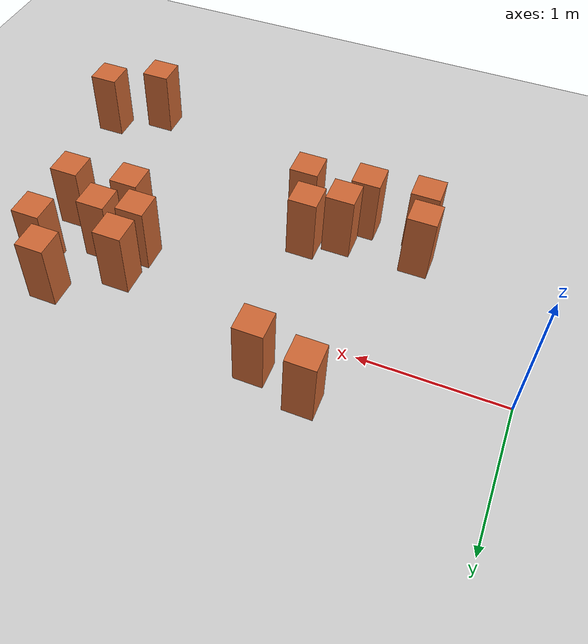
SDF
<sdf version="1.9">
 <world name="default">
  <model name="ground_plane">
   <static>true</static>
   <link name="link">
    <collision name="collision">
     <geometry><plane><normal>0 0 1</normal><size>100 100</size></plane></geometry>
     <surface><friction><ode><mu>100</mu><mu2>50</mu2></ode></friction></surface>
    </collision>
    <visual name="visual">
     <cast_shadows>false</cast_shadows>
     <geometry><plane><normal>0 0 1</normal><size>100 100</size></plane></geometry>
     <material>
      <ambient>0.6 0.6 0.6 1</ambient>
      <diffuse>0.8 0.8 0.8 1</diffuse>
      <specular>0.1 0.1 0.1 1</specular>
     </material>
    </visual>
    <inertial>
     <mass>1</mass>
     <inertia><ixx>1</ixx><ixy>0</ixy><ixz>0</ixz><iyy>1</iyy><iyz>0</iyz><izz>1</izz></inertia>
    </inertial>
   </link>
  </model>
  <model name="wood_cube_10cm_clone_0_clone_3">
   <link name="link">
    <pose>0 0 0.05 0 -0 0</pose>
    <inertial>
     <mass>0.51670000000000005</mass>
     <inertia>
      <ixx>0.00086116700000000003</ixx>
      <ixy>0</ixy>
      <ixz>0</ixz>
      <iyy>0.00086116700000000003</iyy>
      <iyz>0</iyz>
      <izz>0.00086116700000000003</izz>
     </inertia>
    </inertial>
    <collision name="collision">
     <geometry><box><size>0.2 0.2 0.5</size></box></geometry>
     <surface>
      <contact>
       <poissons_ratio>0.34699999999999998</poissons_ratio>
       <elastic_modulus>8800000000</elastic_modulus>
       <ode><kp>100000</kp><kd>100</kd><max_vel>100</max_vel><min_depth>0.001</min_depth></ode>
      </contact>
      <friction>
       <torsional>
        <coefficient>1</coefficient>
        <use_patch_radius>false</use_patch_radius>
        <surface_radius>0.01</surface_radius>
       </torsional>
      </friction>
     </surface>
    </collision>
    <visual name="visual">
     <geometry><box><size>0.2 0.2 0.5</size></box></geometry>
     <material>
      <ambient>0.6 0.3 0.1 1</ambient>
      <diffuse>0.8 0.4 0.2 1</diffuse>
      <specular>0.1 0.1 0.1 1</specular>
     </material>
    </visual>
   </link>
   <pose>1.18442 0.477456 0.249999 0 -0 -0</pose>
   <static>false</static>
  </model>
  <model name="wood_cube_10cm_clone_0_clone_6">
   <link name="link">
    <pose>0 0 0.05 0 -0 0</pose>
    <inertial>
     <mass>0.51670000000000005</mass>
     <inertia>
      <ixx>0.00086116700000000003</ixx>
      <ixy>0</ixy>
      <ixz>0</ixz>
      <iyy>0.00086116700000000003</iyy>
      <iyz>0</iyz>
      <izz>0.00086116700000000003</izz>
     </inertia>
    </inertial>
    <collision name="collision">
     <geometry><box><size>0.2 0.2 0.5</size></box></geometry>
     <surface>
      <contact>
       <poissons_ratio>0.34699999999999998</poissons_ratio>
       <elastic_modulus>8800000000</elastic_modulus>
       <ode><kp>100000</kp><kd>100</kd><max_vel>100</max_vel><min_depth>0.001</min_depth></ode>
      </contact>
      <friction>
       <torsional>
        <coefficient>1</coefficient>
        <use_patch_radius>false</use_patch_radius>
        <surface_radius>0.01</surface_radius>
       </torsional>
      </friction>
     </surface>
    </collision>
    <visual name="visual">
     <geometry><box><size>0.2 0.2 0.5</size></box></geometry>
     <material>
      <ambient>0.6 0.3 0.1 1</ambient>
      <diffuse>0.8 0.4 0.2 1</diffuse>
      <specular>0.1 0.1 0.1 1</specular>
     </material>
    </visual>
   </link>
   <pose>1.54547 0.378806 0.249999 -0 -0 -0</pose>
   <static>false</static>
  </model>
  <model name="wood_cube_10cm_clone_0_clone_4_1">
   <link name="link">
    <pose>0 0 0.05 0 -0 0</pose>
    <inertial>
     <mass>0.51670000000000005</mass>
     <inertia>
      <ixx>0.00086116700000000003</ixx>
      <ixy>0</ixy>
      <ixz>0</ixz>
      <iyy>0.00086116700000000003</iyy>
      <iyz>0</iyz>
      <izz>0.00086116700000000003</izz>
     </inertia>
    </inertial>
    <collision name="collision">
     <geometry><box><size>0.2 0.2 0.5</size></box></geometry>
     <surface>
      <contact>
       <poissons_ratio>0.34699999999999998</poissons_ratio>
       <elastic_modulus>8800000000</elastic_modulus>
       <ode><kp>100000</kp><kd>100</kd><max_vel>100</max_vel><min_depth>0.001</min_depth></ode>
      </contact>
      <friction>
       <torsional>
        <coefficient>1</coefficient>
        <use_patch_radius>false</use_patch_radius>
        <surface_radius>0.01</surface_radius>
       </torsional>
      </friction>
     </surface>
    </collision>
    <visual name="visual">
     <geometry><box><size>0.2 0.2 0.5</size></box></geometry>
     <material>
      <ambient>0.6 0.3 0.1 1</ambient>
      <diffuse>0.8 0.4 0.2 1</diffuse>
      <specular>0.1 0.1 0.1 1</specular>
     </material>
    </visual>
   </link>
   <pose>2.67176 0.017737 0.249999 -0 -0 -0</pose>
   <static>false</static>
  </model>
  <model name="wood_cube_10cm_clone_0_clone_4_2">
   <link name="link">
    <pose>0 0 0.05 0 -0 0</pose>
    <inertial>
     <mass>0.51670000000000005</mass>
     <inertia>
      <ixx>0.00086116700000000003</ixx>
      <ixy>0</ixy>
      <ixz>0</ixz>
      <iyy>0.00086116700000000003</iyy>
      <iyz>0</iyz>
      <izz>0.00086116700000000003</izz>
     </inertia>
    </inertial>
    <collision name="collision">
     <geometry><box><size>0.2 0.2 0.5</size></box></geometry>
     <surface>
      <contact>
       <poissons_ratio>0.34699999999999998</poissons_ratio>
       <elastic_modulus>8800000000</elastic_modulus>
       <ode><kp>100000</kp><kd>100</kd><max_vel>100</max_vel><min_depth>0.001</min_depth></ode>
      </contact>
      <friction>
       <torsional>
        <coefficient>1</coefficient>
        <use_patch_radius>false</use_patch_radius>
        <surface_radius>0.01</surface_radius>
       </torsional>
      </friction>
     </surface>
    </collision>
    <visual name="visual">
     <geometry><box><size>0.2 0.2 0.5</size></box></geometry>
     <material>
      <ambient>0.6 0.3 0.1 1</ambient>
      <diffuse>0.8 0.4 0.2 1</diffuse>
      <specular>0.1 0.1 0.1 1</specular>
     </material>
    </visual>
   </link>
   <pose>2.91344 -0.189719 0.249999 -0 0 -0</pose>
   <static>false</static>
  </model>
  <model name="wood_cube_10cm_clone_0_clone_4_3">
   <link name="link">
    <pose>0 0 0.05 0 -0 0</pose>
    <inertial>
     <mass>0.51670000000000005</mass>
     <inertia>
      <ixx>0.00086116700000000003</ixx>
      <ixy>0</ixy>
      <ixz>0</ixz>
      <iyy>0.00086116700000000003</iyy>
      <iyz>0</iyz>
      <izz>0.00086116700000000003</izz>
     </inertia>
    </inertial>
    <collision name="collision">
     <geometry><box><size>0.2 0.2 0.5</size></box></geometry>
     <surface>
      <contact>
       <poissons_ratio>0.34699999999999998</poissons_ratio>
       <elastic_modulus>8800000000</elastic_modulus>
       <ode><kp>100000</kp><kd>100</kd><max_vel>100</max_vel><min_depth>0.001</min_depth></ode>
      </contact>
      <friction>
       <torsional>
        <coefficient>1</coefficient>
        <use_patch_radius>false</use_patch_radius>
        <surface_radius>0.01</surface_radius>
       </torsional>
      </friction>
     </surface>
    </collision>
    <visual name="visual">
     <geometry><box><size>0.2 0.2 0.5</size></box></geometry>
     <material>
      <ambient>0.6 0.3 0.1 1</ambient>
      <diffuse>0.8 0.4 0.2 1</diffuse>
      <specular>0.1 0.1 0.1 1</specular>
     </material>
    </visual>
   </link>
   <pose>3.25851 0.046879 0.249999 -0 0 -0</pose>
   <static>false</static>
  </model>
  <model name="wood_cube_10cm_clone_0_clone_4_4">
   <link name="link">
    <pose>0 0 0.05 0 -0 0</pose>
    <inertial>
     <mass>0.51670000000000005</mass>
     <inertia>
      <ixx>0.00086116700000000003</ixx>
      <ixy>0</ixy>
      <ixz>0</ixz>
      <iyy>0.00086116700000000003</iyy>
      <iyz>0</iyz>
      <izz>0.00086116700000000003</izz>
     </inertia>
    </inertial>
    <collision name="collision">
     <geometry><box><size>0.2 0.2 0.5</size></box></geometry>
     <surface>
      <contact>
       <poissons_ratio>0.34699999999999998</poissons_ratio>
       <elastic_modulus>8800000000</elastic_modulus>
       <ode><kp>100000</kp><kd>100</kd><max_vel>100</max_vel><min_depth>0.001</min_depth></ode>
      </contact>
      <friction>
       <torsional>
        <coefficient>1</coefficient>
        <use_patch_radius>false</use_patch_radius>
        <surface_radius>0.01</surface_radius>
       </torsional>
      </friction>
     </surface>
    </collision>
    <visual name="visual">
     <geometry><box><size>0.2 0.2 0.5</size></box></geometry>
     <material>
      <ambient>0.6 0.3 0.1 1</ambient>
      <diffuse>0.8 0.4 0.2 1</diffuse>
      <specular>0.1 0.1 0.1 1</specular>
     </material>
    </visual>
   </link>
   <pose>3.06552 0.299131 0.249999 -0 0 -0</pose>
   <static>false</static>
  </model>
  <model name="wood_cube_10cm_clone_0_clone_4_5">
   <link name="link">
    <pose>0 0 0.05 0 -0 0</pose>
    <inertial>
     <mass>0.51670000000000005</mass>
     <inertia>
      <ixx>0.00086116700000000003</ixx>
      <ixy>0</ixy>
      <ixz>0</ixz>
      <iyy>0.00086116700000000003</iyy>
      <iyz>0</iyz>
      <izz>0.00086116700000000003</izz>
     </inertia>
    </inertial>
    <collision name="collision">
     <geometry><box><size>0.2 0.2 0.5</size></box></geometry>
     <surface>
      <contact>
       <poissons_ratio>0.34699999999999998</poissons_ratio>
       <elastic_modulus>8800000000</elastic_modulus>
       <ode><kp>100000</kp><kd>100</kd><max_vel>100</max_vel><min_depth>0.001</min_depth></ode>
      </contact>
      <friction>
       <torsional>
        <coefficient>1</coefficient>
        <use_patch_radius>false</use_patch_radius>
        <surface_radius>0.01</surface_radius>
       </torsional>
      </friction>
     </surface>
    </collision>
    <visual name="visual">
     <geometry><box><size>0.2 0.2 0.5</size></box></geometry>
     <material>
      <ambient>0.6 0.3 0.1 1</ambient>
      <diffuse>0.8 0.4 0.2 1</diffuse>
      <specular>0.1 0.1 0.1 1</specular>
     </material>
    </visual>
   </link>
   <pose>2.64649 -0.233893 0.249999 -0 0 -0</pose>
   <static>false</static>
  </model>
  <model name="wood_cube_10cm_clone_0_clone_4_6">
   <link name="link">
    <pose>0 0 0.05 0 -0 0</pose>
    <inertial>
     <mass>0.51670000000000005</mass>
     <inertia>
      <ixx>0.00086116700000000003</ixx>
      <ixy>0</ixy>
      <ixz>0</ixz>
      <iyy>0.00086116700000000003</iyy>
      <iyz>0</iyz>
      <izz>0.00086116700000000003</izz>
     </inertia>
    </inertial>
    <collision name="collision">
     <geometry><box><size>0.2 0.2 0.5</size></box></geometry>
     <surface>
      <contact>
       <poissons_ratio>0.34699999999999998</poissons_ratio>
       <elastic_modulus>8800000000</elastic_modulus>
       <ode><kp>100000</kp><kd>100</kd><max_vel>100</max_vel><min_depth>0.001</min_depth></ode>
      </contact>
      <friction>
       <torsional>
        <coefficient>1</coefficient>
        <use_patch_radius>false</use_patch_radius>
        <surface_radius>0.01</surface_radius>
       </torsional>
      </friction>
     </surface>
    </collision>
    <visual name="visual">
     <geometry><box><size>0.2 0.2 0.5</size></box></geometry>
     <material>
      <ambient>0.6 0.3 0.1 1</ambient>
      <diffuse>0.8 0.4 0.2 1</diffuse>
      <specular>0.1 0.1 0.1 1</specular>
     </material>
    </visual>
   </link>
   <pose>3.2455 -0.406573 0.249999 0 -0 0</pose>
   <static>false</static>
  </model>
  <model name="wood_cube_10cm_clone_0_clone_4_7">
   <link name="link">
    <pose>0 0 0.05 0 -0 0</pose>
    <inertial>
     <mass>0.51670000000000005</mass>
     <inertia>
      <ixx>0.00086116700000000003</ixx>
      <ixy>0</ixy>
      <ixz>0</ixz>
      <iyy>0.00086116700000000003</iyy>
      <iyz>0</iyz>
      <izz>0.00086116700000000003</izz>
     </inertia>
    </inertial>
    <collision name="collision">
     <geometry><box><size>0.2 0.2 0.5</size></box></geometry>
     <surface>
      <contact>
       <poissons_ratio>0.34699999999999998</poissons_ratio>
       <elastic_modulus>8800000000</elastic_modulus>
       <ode><kp>100000</kp><kd>100</kd><max_vel>100</max_vel><min_depth>0.001</min_depth></ode>
      </contact>
      <friction>
       <torsional>
        <coefficient>1</coefficient>
        <use_patch_radius>false</use_patch_radius>
        <surface_radius>0.01</surface_radius>
       </torsional>
      </friction>
     </surface>
    </collision>
    <visual name="visual">
     <geometry><box><size>0.2 0.2 0.5</size></box></geometry>
     <material>
      <ambient>0.6 0.3 0.1 1</ambient>
      <diffuse>0.8 0.4 0.2 1</diffuse>
      <specular>0.1 0.1 0.1 1</specular>
     </material>
    </visual>
   </link>
   <pose>2.81233 -0.458576 0.249999 -0 0 -0</pose>
   <static>false</static>
  </model>
  <model name="wood_cube_10cm_clone_0_clone_4_8">
   <link name="link">
    <pose>0 0 0.05 0 -0 0</pose>
    <inertial>
     <mass>0.51670000000000005</mass>
     <inertia>
      <ixx>0.00086116700000000003</ixx>
      <ixy>0</ixy>
      <ixz>0</ixz>
      <iyy>0.00086116700000000003</iyy>
      <iyz>0</iyz>
      <izz>0.00086116700000000003</izz>
     </inertia>
    </inertial>
    <collision name="collision">
     <geometry><box><size>0.2 0.2 0.5</size></box></geometry>
     <surface>
      <contact>
       <poissons_ratio>0.34699999999999998</poissons_ratio>
       <elastic_modulus>8800000000</elastic_modulus>
       <ode><kp>100000</kp><kd>100</kd><max_vel>100</max_vel><min_depth>0.001</min_depth></ode>
      </contact>
      <friction>
       <torsional>
        <coefficient>1</coefficient>
        <use_patch_radius>false</use_patch_radius>
        <surface_radius>0.01</surface_radius>
       </torsional>
      </friction>
     </surface>
    </collision>
    <visual name="visual">
     <geometry><box><size>0.2 0.2 0.5</size></box></geometry>
     <material>
      <ambient>0.6 0.3 0.1 1</ambient>
      <diffuse>0.8 0.4 0.2 1</diffuse>
      <specular>0.1 0.1 0.1 1</specular>
     </material>
    </visual>
   </link>
   <pose>1.63168 -0.747012 0.249999 -0 0 -0</pose>
   <static>false</static>
  </model>
  <model name="wood_cube_10cm_clone_0_clone_4_9">
   <link name="link">
    <pose>0 0 0.05 0 -0 0</pose>
    <inertial>
     <mass>0.51670000000000005</mass>
     <inertia>
      <ixx>0.00086116700000000003</ixx>
      <ixy>0</ixy>
      <ixz>0</ixz>
      <iyy>0.00086116700000000003</iyy>
      <iyz>0</iyz>
      <izz>0.00086116700000000003</izz>
     </inertia>
    </inertial>
    <collision name="collision">
     <geometry><box><size>0.2 0.2 0.5</size></box></geometry>
     <surface>
      <contact>
       <poissons_ratio>0.34699999999999998</poissons_ratio>
       <elastic_modulus>8800000000</elastic_modulus>
       <ode><kp>100000</kp><kd>100</kd><max_vel>100</max_vel><min_depth>0.001</min_depth></ode>
      </contact>
      <friction>
       <torsional>
        <coefficient>1</coefficient>
        <use_patch_radius>false</use_patch_radius>
        <surface_radius>0.01</surface_radius>
       </torsional>
      </friction>
     </surface>
    </collision>
    <visual name="visual">
     <geometry><box><size>0.2 0.2 0.5</size></box></geometry>
     <material>
      <ambient>0.6 0.3 0.1 1</ambient>
      <diffuse>0.8 0.4 0.2 1</diffuse>
      <specular>0.1 0.1 0.1 1</specular>
     </material>
    </visual>
   </link>
   <pose>1.40973 -0.865742 0.249999 -0 0 -0</pose>
   <static>false</static>
  </model>
  <model name="wood_cube_10cm_clone_0_clone_4_10">
   <link name="link">
    <pose>0 0 0.05 0 -0 0</pose>
    <inertial>
     <mass>0.51670000000000005</mass>
     <inertia>
      <ixx>0.00086116700000000003</ixx>
      <ixy>0</ixy>
      <ixz>0</ixz>
      <iyy>0.00086116700000000003</iyy>
      <iyz>0</iyz>
      <izz>0.00086116700000000003</izz>
     </inertia>
    </inertial>
    <collision name="collision">
     <geometry><box><size>0.2 0.2 0.5</size></box></geometry>
     <surface>
      <contact>
       <poissons_ratio>0.34699999999999998</poissons_ratio>
       <elastic_modulus>8800000000</elastic_modulus>
       <ode><kp>100000</kp><kd>100</kd><max_vel>100</max_vel><min_depth>0.001</min_depth></ode>
      </contact>
      <friction>
       <torsional>
        <coefficient>1</coefficient>
        <use_patch_radius>false</use_patch_radius>
        <surface_radius>0.01</surface_radius>
       </torsional>
      </friction>
     </surface>
    </collision>
    <visual name="visual">
     <geometry><box><size>0.2 0.2 0.5</size></box></geometry>
     <material>
      <ambient>0.6 0.3 0.1 1</ambient>
      <diffuse>0.8 0.4 0.2 1</diffuse>
      <specular>0.1 0.1 0.1 1</specular>
     </material>
    </visual>
   </link>
   <pose>1.72889 -1.03486 0.249999 -0 0 -0</pose>
   <static>false</static>
  </model>
  <model name="wood_cube_10cm_clone_0_clone_4_11">
   <link name="link">
    <pose>0 0 0.05 0 -0 0</pose>
    <inertial>
     <mass>0.51670000000000005</mass>
     <inertia>
      <ixx>0.00086116700000000003</ixx>
      <ixy>0</ixy>
      <ixz>0</ixz>
      <iyy>0.00086116700000000003</iyy>
      <iyz>0</iyz>
      <izz>0.00086116700000000003</izz>
     </inertia>
    </inertial>
    <collision name="collision">
     <geometry><box><size>0.2 0.2 0.5</size></box></geometry>
     <surface>
      <contact>
       <poissons_ratio>0.34699999999999998</poissons_ratio>
       <elastic_modulus>8800000000</elastic_modulus>
       <ode><kp>100000</kp><kd>100</kd><max_vel>100</max_vel><min_depth>0.001</min_depth></ode>
      </contact>
      <friction>
       <torsional>
        <coefficient>1</coefficient>
        <use_patch_radius>false</use_patch_radius>
        <surface_radius>0.01</surface_radius>
       </torsional>
      </friction>
     </surface>
    </collision>
    <visual name="visual">
     <geometry><box><size>0.2 0.2 0.5</size></box></geometry>
     <material>
      <ambient>0.6 0.3 0.1 1</ambient>
      <diffuse>0.8 0.4 0.2 1</diffuse>
      <specular>0.1 0.1 0.1 1</specular>
     </material>
    </visual>
   </link>
   <pose>1.30162 -1.08727 0.249999 -0 0 -0</pose>
   <static>false</static>
  </model>
  <model name="wood_cube_10cm_clone_0_clone_4_12">
   <link name="link">
    <pose>0 0 0.05 0 -0 0</pose>
    <inertial>
     <mass>0.51670000000000005</mass>
     <inertia>
      <ixx>0.00086116700000000003</ixx>
      <ixy>0</ixy>
      <ixz>0</ixz>
      <iyy>0.00086116700000000003</iyy>
      <iyz>0</iyz>
      <izz>0.00086116700000000003</izz>
     </inertia>
    </inertial>
    <collision name="collision">
     <geometry><box><size>0.2 0.2 0.5</size></box></geometry>
     <surface>
      <contact>
       <poissons_ratio>0.34699999999999998</poissons_ratio>
       <elastic_modulus>8800000000</elastic_modulus>
       <ode><kp>100000</kp><kd>100</kd><max_vel>100</max_vel><min_depth>0.001</min_depth></ode>
      </contact>
      <friction>
       <torsional>
        <coefficient>1</coefficient>
        <use_patch_radius>false</use_patch_radius>
        <surface_radius>0.01</surface_radius>
       </torsional>
      </friction>
     </surface>
    </collision>
    <visual name="visual">
     <geometry><box><size>0.2 0.2 0.5</size></box></geometry>
     <material>
      <ambient>0.6 0.3 0.1 1</ambient>
      <diffuse>0.8 0.4 0.2 1</diffuse>
      <specular>0.1 0.1 0.1 1</specular>
     </material>
    </visual>
   </link>
   <pose>0.857616 -0.877862 0.249999 0 -0 -0</pose>
   <static>false</static>
  </model>
  <model name="wood_cube_10cm_clone_0_clone_4_13">
   <link name="link">
    <pose>0 0 0.05 0 -0 0</pose>
    <inertial>
     <mass>0.51670000000000005</mass>
     <inertia>
      <ixx>0.00086116700000000003</ixx>
      <ixy>0</ixy>
      <ixz>0</ixz>
      <iyy>0.00086116700000000003</iyy>
      <iyz>0</iyz>
      <izz>0.00086116700000000003</izz>
     </inertia>
    </inertial>
    <collision name="collision">
     <geometry><box><size>0.2 0.2 0.5</size></box></geometry>
     <surface>
      <contact>
       <poissons_ratio>0.34699999999999998</poissons_ratio>
       <elastic_modulus>8800000000</elastic_modulus>
       <ode><kp>100000</kp><kd>100</kd><max_vel>100</max_vel><min_depth>0.001</min_depth></ode>
      </contact>
      <friction>
       <torsional>
        <coefficient>1</coefficient>
        <use_patch_radius>false</use_patch_radius>
        <surface_radius>0.01</surface_radius>
       </torsional>
      </friction>
     </surface>
    </collision>
    <visual name="visual">
     <geometry><box><size>0.2 0.2 0.5</size></box></geometry>
     <material>
      <ambient>0.6 0.3 0.1 1</ambient>
      <diffuse>0.8 0.4 0.2 1</diffuse>
      <specular>0.1 0.1 0.1 1</specular>
     </material>
    </visual>
   </link>
   <pose>0.898043 -1.11963 0.249999 0 -0 -0</pose>
   <static>false</static>
  </model>
  <model name="wood_cube_10cm_clone_0_clone_4_25">
   <link name="link">
    <pose>0 0 0.05 0 -0 0</pose>
    <inertial>
     <mass>0.51670000000000005</mass>
     <inertia>
      <ixx>0.00086116700000000003</ixx>
      <ixy>0</ixy>
      <ixz>0</ixz>
      <iyy>0.00086116700000000003</iyy>
      <iyz>0</iyz>
      <izz>0.00086116700000000003</izz>
     </inertia>
    </inertial>
    <collision name="collision">
     <geometry><box><size>0.2 0.2 0.5</size></box></geometry>
     <surface>
      <contact>
       <poissons_ratio>0.34699999999999998</poissons_ratio>
       <elastic_modulus>8800000000</elastic_modulus>
       <ode><kp>100000</kp><kd>100</kd><max_vel>100</max_vel><min_depth>0.001</min_depth></ode>
      </contact>
      <friction>
       <torsional>
        <coefficient>1</coefficient>
        <use_patch_radius>false</use_patch_radius>
        <surface_radius>0.01</surface_radius>
       </torsional>
      </friction>
     </surface>
    </collision>
    <visual name="visual">
     <geometry><box><size>0.2 0.2 0.5</size></box></geometry>
     <material>
      <ambient>0.6 0.3 0.1 1</ambient>
      <diffuse>0.8 0.4 0.2 1</diffuse>
      <specular>0.1 0.1 0.1 1</specular>
     </material>
    </visual>
   </link>
   <pose>3.52738 -1.45129 0.249999 -0 0 -0</pose>
   <static>false</static>
  </model>
  <model name="wood_cube_10cm_clone_0_clone_4_26">
   <link name="link">
    <pose>0 0 0.05 0 -0 0</pose>
    <inertial>
     <mass>0.51670000000000005</mass>
     <inertia>
      <ixx>0.00086116700000000003</ixx>
      <ixy>0</ixy>
      <ixz>0</ixz>
      <iyy>0.00086116700000000003</iyy>
      <iyz>0</iyz>
      <izz>0.00086116700000000003</izz>
     </inertia>
    </inertial>
    <collision name="collision">
     <geometry><box><size>0.2 0.2 0.5</size></box></geometry>
     <surface>
      <contact>
       <poissons_ratio>0.34699999999999998</poissons_ratio>
       <elastic_modulus>8800000000</elastic_modulus>
       <ode><kp>100000</kp><kd>100</kd><max_vel>100</max_vel><min_depth>0.001</min_depth></ode>
      </contact>
      <friction>
       <torsional>
        <coefficient>1</coefficient>
        <use_patch_radius>false</use_patch_radius>
        <surface_radius>0.01</surface_radius>
       </torsional>
      </friction>
     </surface>
    </collision>
    <visual name="visual">
     <geometry><box><size>0.2 0.2 0.5</size></box></geometry>
     <material>
      <ambient>0.6 0.3 0.1 1</ambient>
      <diffuse>0.8 0.4 0.2 1</diffuse>
      <specular>0.1 0.1 0.1 1</specular>
     </material>
    </visual>
   </link>
   <pose>3.17885 -1.64231 0.249999 0 -0 0</pose>
   <static>false</static>
  </model>
 </world>
</sdf>
